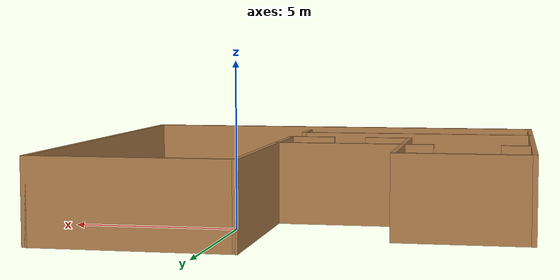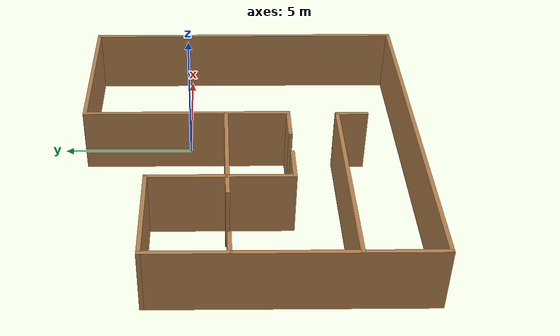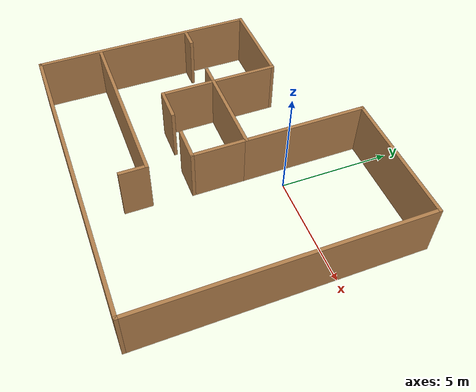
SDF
<?xml version='1.0'?>
<sdf version='1.6'>
  <model name='my_room'>
    <pose frame=''>-1.8651 -2.21622 0 0 -0 0</pose>
    <link name='Wall_0'>
      <collision name='Wall_0_Collision'>
        <geometry>
          <box>
            <size>4 0.15 2.5</size>
          </box>
        </geometry>
        <pose frame=''>0 0 1.25 0 -0 0</pose>
      </collision>
      <visual name='Wall_0_Visual'>
        <pose frame=''>0 0 1.25 0 -0 0</pose>
        <geometry>
          <box>
            <size>4 0.15 2.5</size>
          </box>
        </geometry>
        <material>
          <script>
            <uri>file://media/materials/scripts/gazebo.material</uri>
            <name>Gazebo/Wood</name>
          </script>
          <ambient>1 1 1 1</ambient>
        </material>
        <meta>
          <layer>0</layer>
        </meta>
      </visual>
      <pose frame=''>-4.84997 3.67511 0 0 -0 3.14154</pose>
    </link>
    <link name='Wall_1'>
      <collision name='Wall_1_Collision'>
        <geometry>
          <box>
            <size>10 0.15 2.5</size>
          </box>
        </geometry>
        <pose frame=''>0 0 1.25 0 -0 0</pose>
      </collision>
      <visual name='Wall_1_Visual'>
        <pose frame=''>0 0 1.25 0 -0 0</pose>
        <geometry>
          <box>
            <size>10 0.15 2.5</size>
          </box>
        </geometry>
        <material>
          <script>
            <uri>file://media/materials/scripts/gazebo.material</uri>
            <name>Gazebo/Wood</name>
          </script>
          <ambient>1 1 1 1</ambient>
        </material>
        <meta>
          <layer>0</layer>
        </meta>
      </visual>
      <pose frame=''>-6.7749 -1.24978 0 0 0 -1.5708</pose>
    </link>
    <link name='Wall_11'>
      <collision name='Wall_11_Collision'>
        <geometry>
          <box>
            <size>3 0.15 2.5</size>
          </box>
        </geometry>
        <pose frame=''>0 0 1.25 0 -0 0</pose>
      </collision>
      <visual name='Wall_11_Visual'>
        <pose frame=''>0 0 1.25 0 -0 0</pose>
        <geometry>
          <box>
            <size>3 0.15 2.5</size>
          </box>
        </geometry>
        <material>
          <script>
            <uri>file://media/materials/scripts/gazebo.material</uri>
            <name>Gazebo/Wood</name>
          </script>
          <ambient>1 1 1 1</ambient>
        </material>
        <meta>
          <layer>0</layer>
        </meta>
      </visual>
      <pose frame=''>-2.92503 2.25 0 0 0 -1.5708</pose>
    </link>
    <link name='Wall_12'>
      <collision name='Wall_12_Collision'>
        <geometry>
          <box>
            <size>4 0.15 2.5</size>
          </box>
        </geometry>
        <pose frame=''>0 0 1.25 0 -0 0</pose>
      </collision>
      <visual name='Wall_12_Visual'>
        <pose frame=''>0 0 1.25 0 -0 0</pose>
        <geometry>
          <box>
            <size>4 0.15 2.5</size>
          </box>
        </geometry>
        <material>
          <script>
            <uri>file://media/materials/scripts/gazebo.material</uri>
            <name>Gazebo/Wood</name>
          </script>
          <ambient>1 1 1 1</ambient>
        </material>
        <meta>
          <layer>0</layer>
        </meta>
      </visual>
      <pose frame=''>-1.00003 0.825 0 0 -0 0</pose>
    </link>
    <link name='Wall_13'>
      <collision name='Wall_13_Collision'>
        <geometry>
          <box>
            <size>5.5 0.15 2.5</size>
          </box>
        </geometry>
        <pose frame=''>0 0 1.25 0 -0 0</pose>
      </collision>
      <visual name='Wall_13_Visual'>
        <pose frame=''>0 0 1.25 0 -0 0</pose>
        <geometry>
          <box>
            <size>5.5 0.15 2.5</size>
          </box>
        </geometry>
        <material>
          <script>
            <uri>file://media/materials/scripts/gazebo.material</uri>
            <name>Gazebo/Wood</name>
          </script>
          <ambient>1 1 1 1</ambient>
        </material>
        <meta>
          <layer>0</layer>
        </meta>
      </visual>
      <pose frame=''>0.924969 3.5 0 0 -0 1.5708</pose>
    </link>
    <link name='Wall_14'>
      <collision name='Wall_14_Collision'>
        <geometry>
          <box>
            <size>6 0.15 2.5</size>
          </box>
        </geometry>
        <pose frame=''>0 0 1.25 0 -0 0</pose>
      </collision>
      <visual name='Wall_14_Visual'>
        <pose frame=''>0 0 1.25 0 -0 0</pose>
        <geometry>
          <box>
            <size>6 0.15 2.5</size>
          </box>
        </geometry>
        <material>
          <script>
            <uri>file://media/materials/scripts/gazebo.material</uri>
            <name>Gazebo/Wood</name>
          </script>
          <ambient>1 1 1 1</ambient>
        </material>
        <meta>
          <layer>0</layer>
        </meta>
      </visual>
      <pose frame=''>3.84997 6.175 0 0 -0 0</pose>
    </link>
    <link name='Wall_15'>
      <collision name='Wall_15_Collision'>
        <geometry>
          <box>
            <size>12.5 0.15 2.5</size>
          </box>
        </geometry>
        <pose frame=''>0 0 1.25 0 -0 0</pose>
      </collision>
      <visual name='Wall_15_Visual'>
        <pose frame=''>0 0 1.25 0 -0 0</pose>
        <geometry>
          <box>
            <size>12.5 0.15 2.5</size>
          </box>
        </geometry>
        <material>
          <script>
            <uri>file://media/materials/scripts/gazebo.material</uri>
            <name>Gazebo/Wood</name>
          </script>
          <ambient>1 1 1 1</ambient>
        </material>
        <meta>
          <layer>0</layer>
        </meta>
      </visual>
      <pose frame=''>6.77497 0 0 0 0 -1.5708</pose>
    </link>
    <link name='Wall_16'>
      <collision name='Wall_16_Collision'>
        <geometry>
          <box>
            <size>13.6999 0.15 2.5</size>
          </box>
        </geometry>
        <pose frame=''>0 0 1.25 0 -0 0</pose>
      </collision>
      <visual name='Wall_16_Visual'>
        <pose frame=''>0 0 1.25 0 -0 0</pose>
        <geometry>
          <box>
            <size>13.6999 0.15 2.5</size>
          </box>
        </geometry>
        <material>
          <script>
            <uri>file://media/materials/scripts/gazebo.material</uri>
            <name>Gazebo/Wood</name>
          </script>
          <ambient>1 1 1 1</ambient>
        </material>
        <meta>
          <layer>0</layer>
        </meta>
      </visual>
      <pose frame=''>3.4e-05 -6.17489 0 0 -0 3.14158</pose>
    </link>
    <link name='Wall_18'>
      <collision name='Wall_18_Collision'>
        <geometry>
          <box>
            <size>1 0.15 2.5</size>
          </box>
        </geometry>
        <pose frame=''>0 0 1.25 0 -0 0</pose>
      </collision>
      <visual name='Wall_18_Visual'>
        <pose frame=''>0 0 1.25 0 -0 0</pose>
        <geometry>
          <box>
            <size>1 0.15 2.5</size>
          </box>
        </geometry>
        <material>
          <script>
            <uri>file://media/materials/scripts/gazebo.material</uri>
            <name>Gazebo/Wood</name>
          </script>
          <ambient>1 1 1 1</ambient>
        </material>
        <meta>
          <layer>0</layer>
        </meta>
      </visual>
      <pose frame=''>-3.35003 0.825 0 0 -0 3.14159</pose>
    </link>
    <link name='Wall_21'>
      <collision name='Wall_21_Collision'>
        <geometry>
          <box>
            <size>1 0.15 2.5</size>
          </box>
        </geometry>
        <pose frame=''>0 0 1.25 0 -0 0</pose>
      </collision>
      <visual name='Wall_21_Visual'>
        <pose frame=''>0 0 1.25 0 -0 0</pose>
        <geometry>
          <box>
            <size>1 0.15 2.5</size>
          </box>
        </geometry>
        <material>
          <script>
            <uri>file://media/materials/scripts/gazebo.material</uri>
            <name>Gazebo/Wood</name>
          </script>
          <ambient>1 1 1 1</ambient>
        </material>
        <meta>
          <layer>0</layer>
        </meta>
      </visual>
      <pose frame=''>-6.33323 0.80256 0 0 -0 0</pose>
    </link>
    <link name='Wall_23'>
      <collision name='Wall_23_Collision'>
        <geometry>
          <box>
            <size>2.5 0.15 2.5</size>
          </box>
        </geometry>
        <pose frame=''>0 0 1.25 0 -0 0</pose>
      </collision>
      <visual name='Wall_23_Visual'>
        <pose frame=''>0 0 1.25 0 -0 0</pose>
        <geometry>
          <box>
            <size>2.5 0.15 2.5</size>
          </box>
        </geometry>
        <material>
          <script>
            <uri>file://media/materials/scripts/gazebo.material</uri>
            <name>Gazebo/Wood</name>
          </script>
          <ambient>1 1 1 1</ambient>
        </material>
        <meta>
          <layer>0</layer>
        </meta>
      </visual>
      <pose frame=''>-2.92503 -0.35 0 0 0 -1.5708</pose>
    </link>
    <link name='Wall_25'>
      <collision name='Wall_25_Collision'>
        <geometry>
          <box>
            <size>2.5 0.15 2.5</size>
          </box>
        </geometry>
        <pose frame=''>0 0 1.25 0 -0 0</pose>
      </collision>
      <visual name='Wall_25_Visual'>
        <pose frame=''>0 0 1.25 0 -0 0</pose>
        <geometry>
          <box>
            <size>2.5 0.15 2.5</size>
          </box>
        </geometry>
        <material>
          <script>
            <uri>file://media/materials/scripts/gazebo.material</uri>
            <name>Gazebo/Wood</name>
          </script>
          <ambient>1 1 1 1</ambient>
        </material>
        <meta>
          <layer>0</layer>
        </meta>
      </visual>
      <pose frame=''>0.924969 -0.35 0 0 0 -1.5708</pose>
    </link>
    <link name='Wall_27'>
      <collision name='Wall_27_Collision'>
        <geometry>
          <box>
            <size>1.5 0.15 2.5</size>
          </box>
        </geometry>
        <pose frame=''>0 0 1.25 0 -0 0</pose>
      </collision>
      <visual name='Wall_27_Visual'>
        <pose frame=''>0 0 1.25 0 -0 0</pose>
        <geometry>
          <box>
            <size>1.5 0.15 2.5</size>
          </box>
        </geometry>
        <material>
          <script>
            <uri>file://media/materials/scripts/gazebo.material</uri>
            <name>Gazebo/Wood</name>
          </script>
          <ambient>1 1 1 1</ambient>
        </material>
        <meta>
          <layer>0</layer>
        </meta>
      </visual>
      <pose frame=''>-2.25003 -1.525 0 0 -0 0</pose>
    </link>
    <link name='Wall_29'>
      <collision name='Wall_29_Collision'>
        <geometry>
          <box>
            <size>1.5 0.15 2.5</size>
          </box>
        </geometry>
        <pose frame=''>0 0 1.25 0 -0 0</pose>
      </collision>
      <visual name='Wall_29_Visual'>
        <pose frame=''>0 0 1.25 0 -0 0</pose>
        <geometry>
          <box>
            <size>1.5 0.15 2.5</size>
          </box>
        </geometry>
        <material>
          <script>
            <uri>file://media/materials/scripts/gazebo.material</uri>
            <name>Gazebo/Wood</name>
          </script>
          <ambient>1 1 1 1</ambient>
        </material>
        <meta>
          <layer>0</layer>
        </meta>
      </visual>
      <pose frame=''>0.249969 -1.525 0 0 -0 3.14159</pose>
    </link>
    <link name='Wall_33'>
      <collision name='Wall_33_Collision'>
        <geometry>
          <box>
            <size>7.75 0.15 2.5</size>
          </box>
        </geometry>
        <pose frame=''>0 0 1.25 0 -0 0</pose>
      </collision>
      <visual name='Wall_33_Visual'>
        <pose frame=''>0 0 1.25 0 -0 0</pose>
        <geometry>
          <box>
            <size>7.75 0.15 2.5</size>
          </box>
        </geometry>
        <material>
          <script>
            <uri>file://media/materials/scripts/gazebo.material</uri>
            <name>Gazebo/Wood</name>
          </script>
          <ambient>1 1 1 1</ambient>
        </material>
        <meta>
          <layer>0</layer>
        </meta>
      </visual>
      <pose frame=''>-2.95965 -3.37852 0 0 -0 0</pose>
    </link>
    <link name='Wall_34'>
      <collision name='Wall_34_Collision'>
        <geometry>
          <box>
            <size>1.25 0.15 2.5</size>
          </box>
        </geometry>
        <pose frame=''>0 0 1.25 0 -0 0</pose>
      </collision>
      <visual name='Wall_34_Visual'>
        <pose frame=''>0 0 1.25 0 -0 0</pose>
        <geometry>
          <box>
            <size>1.25 0.15 2.5</size>
          </box>
        </geometry>
        <material>
          <script>
            <uri>file://media/materials/scripts/gazebo.material</uri>
            <name>Gazebo/Wood</name>
          </script>
          <ambient>1 1 1 1</ambient>
        </material>
        <meta>
          <layer>0</layer>
        </meta>
      </visual>
      <pose frame=''>0.840353 -3.92852 0 0 0 -1.5708</pose>
    </link>
    <static>1</static>
  </model>
</sdf>
